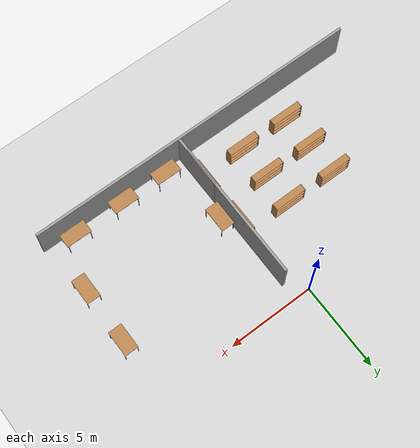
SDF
<sdf version="1.7">
 <world name="default">
  <model name="ground_plane">
   <static>1</static>
   <link name="link">
    <collision name="collision">
     <geometry><plane><normal>0 0 1</normal><size>100 100</size></plane></geometry>
     <surface>
      <contact><collide_bitmask>65535</collide_bitmask></contact>
      <friction><ode><mu>100</mu><mu2>50</mu2></ode></friction>
     </surface>
    </collision>
    <visual name="visual">
     <cast_shadows>0</cast_shadows>
     <geometry><plane><normal>0 0 1</normal><size>100 100</size></plane></geometry>
     <material>
      <script><uri>file://media/materials/scripts/gazebo.material</uri><name>Gazebo/Grey</name></script>
     </material>
    </visual>
   </link>
  </model>
  <model name="wall_20m_0_clone">
   <pose>-0.174596 -10.5481 0 0 0 -1.56837</pose>
   <link name="Wall_0">
    <collision name="Wall_0_Collision">
     <geometry><box><size>20 0.15 2.5</size></box></geometry>
     <pose>0 0 1.25 0 -0 0</pose>
    </collision>
    <visual name="Wall_0_Visual">
     <pose>0 0 1.25 0 -0 0</pose>
     <geometry><box><size>20 0.15 2.5</size></box></geometry>
     <material>
      <script><uri>file://media/materials/scripts/gazebo.material</uri><name>Gazebo/Grey</name></script>
      <ambient>1 1 1 1</ambient>
     </material>
     <meta><layer>0</layer></meta>
    </visual>
    <pose>-0.482276 -0 0 0 -0 1.5708</pose>
   </link>
   <static>1</static>
  </model>
  <model name="wall_9m_1">
   <pose>0.904043 -5.47693 0 0 0 -1.57385</pose>
   <link name="Wall_0">
    <collision name="Wall_0_Collision">
     <geometry><box><size>3.16 0.15 2.5</size></box></geometry>
     <pose>0 0 1.25 0 -0 0</pose>
    </collision>
    <visual name="Wall_0_Visual">
     <pose>0 0 1.25 0 -0 0</pose>
     <geometry><box><size>3.16 0.15 2.5</size></box></geometry>
     <material>
      <script><uri>file://media/materials/scripts/gazebo.material</uri><name>Gazebo/Grey</name></script>
      <ambient>1 1 1 1</ambient>
     </material>
     <meta><layer>0</layer></meta>
    </visual>
    <pose>2.92 0 0 0 -0 0</pose>
   </link>
   <link name="Wall_1">
    <collision name="Wall_1_Collision">
     <geometry><box><size>9 0.15 2.5</size></box></geometry>
     <pose>0 0 1.25 0 -0 0</pose>
    </collision>
    <visual name="Wall_1_Visual">
     <pose>0 0 1.25 0 -0 0</pose>
     <geometry><box><size>9 0.15 2.5</size></box></geometry>
     <material>
      <script><uri>file://media/materials/scripts/gazebo.material</uri><name>Gazebo/Grey</name></script>
      <ambient>1 1 1 1</ambient>
     </material>
     <meta><layer>0</layer></meta>
    </visual>
    <pose>0 0 0 0 -0 3.14159</pose>
   </link>
   <static>1</static>
  </model>
  <model name="bookshelf_twosided_0">
   <static>1</static>
   <link name="link">
    <inertial><mass>1</mass></inertial>
    <collision name="left_side">
     <pose>0.95 -0.195 0.6 0 -0 0</pose>
     <geometry><box><size>0.02 0.4 1.2</size></box></geometry>
    </collision>
    <visual name="left_side">
     <pose>0.95 -0.195 0.6 0 -0 0</pose>
     <geometry><box><size>0.02 0.4 1.2</size></box></geometry>
     <material>
      <script><uri>file://media/materials/scripts/gazebo.material</uri><name>Gazebo/Wood</name></script>
     </material>
    </visual>
    <collision name="right_side">
     <pose>-0.95 -0.195 0.6 0 -0 0</pose>
     <geometry><box><size>0.02 0.4 1.2</size></box></geometry>
    </collision>
    <visual name="right_side">
     <pose>-0.95 -0.195 0.6 0 -0 0</pose>
     <geometry><box><size>0.02 0.4 1.2</size></box></geometry>
     <material>
      <script><uri>file://media/materials/scripts/gazebo.material</uri><name>Gazebo/Wood</name></script>
     </material>
    </visual>
    <collision name="bottom">
     <pose>0 -0.195 0.03 0 -0 0</pose>
     <geometry><box><size>1.88 0.4 0.06</size></box></geometry>
    </collision>
    <visual name="bottom">
     <pose>0 -0.195 0.03 0 -0 0</pose>
     <geometry><box><size>1.88 0.4 0.06</size></box></geometry>
     <material>
      <script><uri>file://media/materials/scripts/gazebo.material</uri><name>Gazebo/Wood</name></script>
     </material>
    </visual>
    <collision name="top">
     <pose>0 -0.195 1.19 0 -0 0</pose>
     <geometry><box><size>1.88 0.4 0.02</size></box></geometry>
    </collision>
    <visual name="top">
     <pose>0 -0.195 1.19 0 -0 0</pose>
     <geometry><box><size>1.88 0.4 0.02</size></box></geometry>
     <material>
      <script><uri>file://media/materials/scripts/gazebo.material</uri><name>Gazebo/Wood</name></script>
     </material>
    </visual>
    <collision name="low_shelf">
     <pose>0 -0.195 0.43 0 -0 0</pose>
     <geometry><box><size>1.88 0.4 0.02</size></box></geometry>
    </collision>
    <visual name="low_shelf">
     <pose>0 -0.195 0.43 0 -0 0</pose>
     <geometry><box><size>1.88 0.4 0.02</size></box></geometry>
     <material>
      <script><uri>file://media/materials/scripts/gazebo.material</uri><name>Gazebo/Wood</name></script>
     </material>
    </visual>
    <collision name="high_shelf">
     <pose>0 -0.195 0.8 0 -0 0</pose>
     <geometry><box><size>1.88 0.4 0.02</size></box></geometry>
    </collision>
    <visual name="high_shelf">
     <pose>0 -0.195 0.8 0 -0 0</pose>
     <geometry><box><size>1.88 0.4 0.02</size></box></geometry>
     <material>
      <script><uri>file://media/materials/scripts/gazebo.material</uri><name>Gazebo/Wood</name></script>
     </material>
    </visual>
   </link>
   <pose>-5.00919 -8.07152 0 0 -0 0</pose>
  </model>
  <model name="bookshelf_twosided_1">
   <static>1</static>
   <link name="link">
    <inertial><mass>1</mass></inertial>
    <collision name="left_side">
     <pose>0.95 -0.195 0.6 0 -0 0</pose>
     <geometry><box><size>0.02 0.4 1.2</size></box></geometry>
    </collision>
    <visual name="left_side">
     <pose>0.95 -0.195 0.6 0 -0 0</pose>
     <geometry><box><size>0.02 0.4 1.2</size></box></geometry>
     <material>
      <script><uri>file://media/materials/scripts/gazebo.material</uri><name>Gazebo/Wood</name></script>
     </material>
    </visual>
    <collision name="right_side">
     <pose>-0.95 -0.195 0.6 0 -0 0</pose>
     <geometry><box><size>0.02 0.4 1.2</size></box></geometry>
    </collision>
    <visual name="right_side">
     <pose>-0.95 -0.195 0.6 0 -0 0</pose>
     <geometry><box><size>0.02 0.4 1.2</size></box></geometry>
     <material>
      <script><uri>file://media/materials/scripts/gazebo.material</uri><name>Gazebo/Wood</name></script>
     </material>
    </visual>
    <collision name="bottom">
     <pose>0 -0.195 0.03 0 -0 0</pose>
     <geometry><box><size>1.88 0.4 0.06</size></box></geometry>
    </collision>
    <visual name="bottom">
     <pose>0 -0.195 0.03 0 -0 0</pose>
     <geometry><box><size>1.88 0.4 0.06</size></box></geometry>
     <material>
      <script><uri>file://media/materials/scripts/gazebo.material</uri><name>Gazebo/Wood</name></script>
     </material>
    </visual>
    <collision name="top">
     <pose>0 -0.195 1.19 0 -0 0</pose>
     <geometry><box><size>1.88 0.4 0.02</size></box></geometry>
    </collision>
    <visual name="top">
     <pose>0 -0.195 1.19 0 -0 0</pose>
     <geometry><box><size>1.88 0.4 0.02</size></box></geometry>
     <material>
      <script><uri>file://media/materials/scripts/gazebo.material</uri><name>Gazebo/Wood</name></script>
     </material>
    </visual>
    <collision name="low_shelf">
     <pose>0 -0.195 0.43 0 -0 0</pose>
     <geometry><box><size>1.88 0.4 0.02</size></box></geometry>
    </collision>
    <visual name="low_shelf">
     <pose>0 -0.195 0.43 0 -0 0</pose>
     <geometry><box><size>1.88 0.4 0.02</size></box></geometry>
     <material>
      <script><uri>file://media/materials/scripts/gazebo.material</uri><name>Gazebo/Wood</name></script>
     </material>
    </visual>
    <collision name="high_shelf">
     <pose>0 -0.195 0.8 0 -0 0</pose>
     <geometry><box><size>1.88 0.4 0.02</size></box></geometry>
    </collision>
    <visual name="high_shelf">
     <pose>0 -0.195 0.8 0 -0 0</pose>
     <geometry><box><size>1.88 0.4 0.02</size></box></geometry>
     <material>
      <script><uri>file://media/materials/scripts/gazebo.material</uri><name>Gazebo/Wood</name></script>
     </material>
    </visual>
   </link>
   <pose>-2.03359 -8.06213 0 0 -0 0</pose>
  </model>
  <model name="bookshelf_twosided_3">
   <static>1</static>
   <link name="link">
    <inertial><mass>1</mass></inertial>
    <collision name="left_side">
     <pose>0.95 -0.195 0.6 0 -0 0</pose>
     <geometry><box><size>0.02 0.4 1.2</size></box></geometry>
    </collision>
    <visual name="left_side">
     <pose>0.95 -0.195 0.6 0 -0 0</pose>
     <geometry><box><size>0.02 0.4 1.2</size></box></geometry>
     <material>
      <script><uri>file://media/materials/scripts/gazebo.material</uri><name>Gazebo/Wood</name></script>
     </material>
    </visual>
    <collision name="right_side">
     <pose>-0.95 -0.195 0.6 0 -0 0</pose>
     <geometry><box><size>0.02 0.4 1.2</size></box></geometry>
    </collision>
    <visual name="right_side">
     <pose>-0.95 -0.195 0.6 0 -0 0</pose>
     <geometry><box><size>0.02 0.4 1.2</size></box></geometry>
     <material>
      <script><uri>file://media/materials/scripts/gazebo.material</uri><name>Gazebo/Wood</name></script>
     </material>
    </visual>
    <collision name="bottom">
     <pose>0 -0.195 0.03 0 -0 0</pose>
     <geometry><box><size>1.88 0.4 0.06</size></box></geometry>
    </collision>
    <visual name="bottom">
     <pose>0 -0.195 0.03 0 -0 0</pose>
     <geometry><box><size>1.88 0.4 0.06</size></box></geometry>
     <material>
      <script><uri>file://media/materials/scripts/gazebo.material</uri><name>Gazebo/Wood</name></script>
     </material>
    </visual>
    <collision name="top">
     <pose>0 -0.195 1.19 0 -0 0</pose>
     <geometry><box><size>1.88 0.4 0.02</size></box></geometry>
    </collision>
    <visual name="top">
     <pose>0 -0.195 1.19 0 -0 0</pose>
     <geometry><box><size>1.88 0.4 0.02</size></box></geometry>
     <material>
      <script><uri>file://media/materials/scripts/gazebo.material</uri><name>Gazebo/Wood</name></script>
     </material>
    </visual>
    <collision name="low_shelf">
     <pose>0 -0.195 0.43 0 -0 0</pose>
     <geometry><box><size>1.88 0.4 0.02</size></box></geometry>
    </collision>
    <visual name="low_shelf">
     <pose>0 -0.195 0.43 0 -0 0</pose>
     <geometry><box><size>1.88 0.4 0.02</size></box></geometry>
     <material>
      <script><uri>file://media/materials/scripts/gazebo.material</uri><name>Gazebo/Wood</name></script>
     </material>
    </visual>
    <collision name="high_shelf">
     <pose>0 -0.195 0.8 0 -0 0</pose>
     <geometry><box><size>1.88 0.4 0.02</size></box></geometry>
    </collision>
    <visual name="high_shelf">
     <pose>0 -0.195 0.8 0 -0 0</pose>
     <geometry><box><size>1.88 0.4 0.02</size></box></geometry>
     <material>
      <script><uri>file://media/materials/scripts/gazebo.material</uri><name>Gazebo/Wood</name></script>
     </material>
    </visual>
   </link>
   <pose>-5.05887 -6.04865 0 0 -0 0</pose>
  </model>
  <model name="bookshelf_twosided_4">
   <static>1</static>
   <link name="link">
    <inertial><mass>1</mass></inertial>
    <collision name="left_side">
     <pose>0.95 -0.195 0.6 0 -0 0</pose>
     <geometry><box><size>0.02 0.4 1.2</size></box></geometry>
    </collision>
    <visual name="left_side">
     <pose>0.95 -0.195 0.6 0 -0 0</pose>
     <geometry><box><size>0.02 0.4 1.2</size></box></geometry>
     <material>
      <script><uri>file://media/materials/scripts/gazebo.material</uri><name>Gazebo/Wood</name></script>
     </material>
    </visual>
    <collision name="right_side">
     <pose>-0.95 -0.195 0.6 0 -0 0</pose>
     <geometry><box><size>0.02 0.4 1.2</size></box></geometry>
    </collision>
    <visual name="right_side">
     <pose>-0.95 -0.195 0.6 0 -0 0</pose>
     <geometry><box><size>0.02 0.4 1.2</size></box></geometry>
     <material>
      <script><uri>file://media/materials/scripts/gazebo.material</uri><name>Gazebo/Wood</name></script>
     </material>
    </visual>
    <collision name="bottom">
     <pose>0 -0.195 0.03 0 -0 0</pose>
     <geometry><box><size>1.88 0.4 0.06</size></box></geometry>
    </collision>
    <visual name="bottom">
     <pose>0 -0.195 0.03 0 -0 0</pose>
     <geometry><box><size>1.88 0.4 0.06</size></box></geometry>
     <material>
      <script><uri>file://media/materials/scripts/gazebo.material</uri><name>Gazebo/Wood</name></script>
     </material>
    </visual>
    <collision name="top">
     <pose>0 -0.195 1.19 0 -0 0</pose>
     <geometry><box><size>1.88 0.4 0.02</size></box></geometry>
    </collision>
    <visual name="top">
     <pose>0 -0.195 1.19 0 -0 0</pose>
     <geometry><box><size>1.88 0.4 0.02</size></box></geometry>
     <material>
      <script><uri>file://media/materials/scripts/gazebo.material</uri><name>Gazebo/Wood</name></script>
     </material>
    </visual>
    <collision name="low_shelf">
     <pose>0 -0.195 0.43 0 -0 0</pose>
     <geometry><box><size>1.88 0.4 0.02</size></box></geometry>
    </collision>
    <visual name="low_shelf">
     <pose>0 -0.195 0.43 0 -0 0</pose>
     <geometry><box><size>1.88 0.4 0.02</size></box></geometry>
     <material>
      <script><uri>file://media/materials/scripts/gazebo.material</uri><name>Gazebo/Wood</name></script>
     </material>
    </visual>
    <collision name="high_shelf">
     <pose>0 -0.195 0.8 0 -0 0</pose>
     <geometry><box><size>1.88 0.4 0.02</size></box></geometry>
    </collision>
    <visual name="high_shelf">
     <pose>0 -0.195 0.8 0 -0 0</pose>
     <geometry><box><size>1.88 0.4 0.02</size></box></geometry>
     <material>
      <script><uri>file://media/materials/scripts/gazebo.material</uri><name>Gazebo/Wood</name></script>
     </material>
    </visual>
   </link>
   <pose>-2.11262 -6.05427 0 0 -0 0</pose>
  </model>
  <model name="bookshelf_twosided_6">
   <static>1</static>
   <link name="link">
    <inertial><mass>1</mass></inertial>
    <collision name="left_side">
     <pose>0.95 -0.195 0.6 0 -0 0</pose>
     <geometry><box><size>0.02 0.4 1.2</size></box></geometry>
    </collision>
    <visual name="left_side">
     <pose>0.95 -0.195 0.6 0 -0 0</pose>
     <geometry><box><size>0.02 0.4 1.2</size></box></geometry>
     <material>
      <script><uri>file://media/materials/scripts/gazebo.material</uri><name>Gazebo/Wood</name></script>
     </material>
    </visual>
    <collision name="right_side">
     <pose>-0.95 -0.195 0.6 0 -0 0</pose>
     <geometry><box><size>0.02 0.4 1.2</size></box></geometry>
    </collision>
    <visual name="right_side">
     <pose>-0.95 -0.195 0.6 0 -0 0</pose>
     <geometry><box><size>0.02 0.4 1.2</size></box></geometry>
     <material>
      <script><uri>file://media/materials/scripts/gazebo.material</uri><name>Gazebo/Wood</name></script>
     </material>
    </visual>
    <collision name="bottom">
     <pose>0 -0.195 0.03 0 -0 0</pose>
     <geometry><box><size>1.88 0.4 0.06</size></box></geometry>
    </collision>
    <visual name="bottom">
     <pose>0 -0.195 0.03 0 -0 0</pose>
     <geometry><box><size>1.88 0.4 0.06</size></box></geometry>
     <material>
      <script><uri>file://media/materials/scripts/gazebo.material</uri><name>Gazebo/Wood</name></script>
     </material>
    </visual>
    <collision name="top">
     <pose>0 -0.195 1.19 0 -0 0</pose>
     <geometry><box><size>1.88 0.4 0.02</size></box></geometry>
    </collision>
    <visual name="top">
     <pose>0 -0.195 1.19 0 -0 0</pose>
     <geometry><box><size>1.88 0.4 0.02</size></box></geometry>
     <material>
      <script><uri>file://media/materials/scripts/gazebo.material</uri><name>Gazebo/Wood</name></script>
     </material>
    </visual>
    <collision name="low_shelf">
     <pose>0 -0.195 0.43 0 -0 0</pose>
     <geometry><box><size>1.88 0.4 0.02</size></box></geometry>
    </collision>
    <visual name="low_shelf">
     <pose>0 -0.195 0.43 0 -0 0</pose>
     <geometry><box><size>1.88 0.4 0.02</size></box></geometry>
     <material>
      <script><uri>file://media/materials/scripts/gazebo.material</uri><name>Gazebo/Wood</name></script>
     </material>
    </visual>
    <collision name="high_shelf">
     <pose>0 -0.195 0.8 0 -0 0</pose>
     <geometry><box><size>1.88 0.4 0.02</size></box></geometry>
    </collision>
    <visual name="high_shelf">
     <pose>0 -0.195 0.8 0 -0 0</pose>
     <geometry><box><size>1.88 0.4 0.02</size></box></geometry>
     <material>
      <script><uri>file://media/materials/scripts/gazebo.material</uri><name>Gazebo/Wood</name></script>
     </material>
    </visual>
   </link>
   <pose>-5.09321 -4.07593 0 0 -0 0</pose>
  </model>
  <model name="bookshelf_twosided_7">
   <static>1</static>
   <link name="link">
    <inertial><mass>1</mass></inertial>
    <collision name="left_side">
     <pose>0.95 -0.195 0.6 0 -0 0</pose>
     <geometry><box><size>0.02 0.4 1.2</size></box></geometry>
    </collision>
    <visual name="left_side">
     <pose>0.95 -0.195 0.6 0 -0 0</pose>
     <geometry><box><size>0.02 0.4 1.2</size></box></geometry>
     <material>
      <script><uri>file://media/materials/scripts/gazebo.material</uri><name>Gazebo/Wood</name></script>
     </material>
    </visual>
    <collision name="right_side">
     <pose>-0.95 -0.195 0.6 0 -0 0</pose>
     <geometry><box><size>0.02 0.4 1.2</size></box></geometry>
    </collision>
    <visual name="right_side">
     <pose>-0.95 -0.195 0.6 0 -0 0</pose>
     <geometry><box><size>0.02 0.4 1.2</size></box></geometry>
     <material>
      <script><uri>file://media/materials/scripts/gazebo.material</uri><name>Gazebo/Wood</name></script>
     </material>
    </visual>
    <collision name="bottom">
     <pose>0 -0.195 0.03 0 -0 0</pose>
     <geometry><box><size>1.88 0.4 0.06</size></box></geometry>
    </collision>
    <visual name="bottom">
     <pose>0 -0.195 0.03 0 -0 0</pose>
     <geometry><box><size>1.88 0.4 0.06</size></box></geometry>
     <material>
      <script><uri>file://media/materials/scripts/gazebo.material</uri><name>Gazebo/Wood</name></script>
     </material>
    </visual>
    <collision name="top">
     <pose>0 -0.195 1.19 0 -0 0</pose>
     <geometry><box><size>1.88 0.4 0.02</size></box></geometry>
    </collision>
    <visual name="top">
     <pose>0 -0.195 1.19 0 -0 0</pose>
     <geometry><box><size>1.88 0.4 0.02</size></box></geometry>
     <material>
      <script><uri>file://media/materials/scripts/gazebo.material</uri><name>Gazebo/Wood</name></script>
     </material>
    </visual>
    <collision name="low_shelf">
     <pose>0 -0.195 0.43 0 -0 0</pose>
     <geometry><box><size>1.88 0.4 0.02</size></box></geometry>
    </collision>
    <visual name="low_shelf">
     <pose>0 -0.195 0.43 0 -0 0</pose>
     <geometry><box><size>1.88 0.4 0.02</size></box></geometry>
     <material>
      <script><uri>file://media/materials/scripts/gazebo.material</uri><name>Gazebo/Wood</name></script>
     </material>
    </visual>
    <collision name="high_shelf">
     <pose>0 -0.195 0.8 0 -0 0</pose>
     <geometry><box><size>1.88 0.4 0.02</size></box></geometry>
    </collision>
    <visual name="high_shelf">
     <pose>0 -0.195 0.8 0 -0 0</pose>
     <geometry><box><size>1.88 0.4 0.02</size></box></geometry>
     <material>
      <script><uri>file://media/materials/scripts/gazebo.material</uri><name>Gazebo/Wood</name></script>
     </material>
    </visual>
   </link>
   <pose>-2.06106 -4.13375 0 0 -0 0</pose>
  </model>
  <model name="bookshelf_twosided_11">
   <static>1</static>
   <link name="link">
    <inertial><mass>1</mass></inertial>
    <collision name="left_side">
     <pose>0.95 -0.195 0.6 0 -0 0</pose>
     <geometry><box><size>0.02 0.4 1.2</size></box></geometry>
    </collision>
    <visual name="left_side">
     <pose>0.95 -0.195 0.6 0 -0 0</pose>
     <geometry><box><size>0.02 0.4 1.2</size></box></geometry>
     <material>
      <script><uri>file://media/materials/scripts/gazebo.material</uri><name>Gazebo/Wood</name></script>
     </material>
    </visual>
    <collision name="right_side">
     <pose>-0.95 -0.195 0.6 0 -0 0</pose>
     <geometry><box><size>0.02 0.4 1.2</size></box></geometry>
    </collision>
    <visual name="right_side">
     <pose>-0.95 -0.195 0.6 0 -0 0</pose>
     <geometry><box><size>0.02 0.4 1.2</size></box></geometry>
     <material>
      <script><uri>file://media/materials/scripts/gazebo.material</uri><name>Gazebo/Wood</name></script>
     </material>
    </visual>
    <collision name="bottom">
     <pose>0 -0.195 0.03 0 -0 0</pose>
     <geometry><box><size>1.88 0.4 0.06</size></box></geometry>
    </collision>
    <visual name="bottom">
     <pose>0 -0.195 0.03 0 -0 0</pose>
     <geometry><box><size>1.88 0.4 0.06</size></box></geometry>
     <material>
      <script><uri>file://media/materials/scripts/gazebo.material</uri><name>Gazebo/Wood</name></script>
     </material>
    </visual>
    <collision name="top">
     <pose>0 -0.195 1.19 0 -0 0</pose>
     <geometry><box><size>1.88 0.4 0.02</size></box></geometry>
    </collision>
    <visual name="top">
     <pose>0 -0.195 1.19 0 -0 0</pose>
     <geometry><box><size>1.88 0.4 0.02</size></box></geometry>
     <material>
      <script><uri>file://media/materials/scripts/gazebo.material</uri><name>Gazebo/Wood</name></script>
     </material>
    </visual>
    <collision name="low_shelf">
     <pose>0 -0.195 0.43 0 -0 0</pose>
     <geometry><box><size>1.88 0.4 0.02</size></box></geometry>
    </collision>
    <visual name="low_shelf">
     <pose>0 -0.195 0.43 0 -0 0</pose>
     <geometry><box><size>1.88 0.4 0.02</size></box></geometry>
     <material>
      <script><uri>file://media/materials/scripts/gazebo.material</uri><name>Gazebo/Wood</name></script>
     </material>
    </visual>
    <collision name="high_shelf">
     <pose>0 -0.195 0.8 0 -0 0</pose>
     <geometry><box><size>1.88 0.4 0.02</size></box></geometry>
    </collision>
    <visual name="high_shelf">
     <pose>0 -0.195 0.8 0 -0 0</pose>
     <geometry><box><size>1.88 0.4 0.02</size></box></geometry>
     <material>
      <script><uri>file://media/materials/scripts/gazebo.material</uri><name>Gazebo/Wood</name></script>
     </material>
    </visual>
   </link>
   <pose>0.827375 -7.96872 0 0 0 -1.57564</pose>
  </model>
  <model name="bookshelf_twosided_11_clone">
   <static>1</static>
   <link name="link">
    <inertial><mass>1</mass></inertial>
    <collision name="left_side">
     <pose>0.95 -0.195 0.6 0 -0 0</pose>
     <geometry><box><size>0.02 0.4 1.2</size></box></geometry>
    </collision>
    <visual name="left_side">
     <pose>0.95 -0.195 0.6 0 -0 0</pose>
     <geometry><box><size>0.02 0.4 1.2</size></box></geometry>
     <material>
      <script><uri>file://media/materials/scripts/gazebo.material</uri><name>Gazebo/Wood</name></script>
     </material>
    </visual>
    <collision name="right_side">
     <pose>-0.95 -0.195 0.6 0 -0 0</pose>
     <geometry><box><size>0.02 0.4 1.2</size></box></geometry>
    </collision>
    <visual name="right_side">
     <pose>-0.95 -0.195 0.6 0 -0 0</pose>
     <geometry><box><size>0.02 0.4 1.2</size></box></geometry>
     <material>
      <script><uri>file://media/materials/scripts/gazebo.material</uri><name>Gazebo/Wood</name></script>
     </material>
    </visual>
    <collision name="bottom">
     <pose>0 -0.195 0.03 0 -0 0</pose>
     <geometry><box><size>1.88 0.4 0.06</size></box></geometry>
    </collision>
    <visual name="bottom">
     <pose>0 -0.195 0.03 0 -0 0</pose>
     <geometry><box><size>1.88 0.4 0.06</size></box></geometry>
     <material>
      <script><uri>file://media/materials/scripts/gazebo.material</uri><name>Gazebo/Wood</name></script>
     </material>
    </visual>
    <collision name="top">
     <pose>0 -0.195 1.19 0 -0 0</pose>
     <geometry><box><size>1.88 0.4 0.02</size></box></geometry>
    </collision>
    <visual name="top">
     <pose>0 -0.195 1.19 0 -0 0</pose>
     <geometry><box><size>1.88 0.4 0.02</size></box></geometry>
     <material>
      <script><uri>file://media/materials/scripts/gazebo.material</uri><name>Gazebo/Wood</name></script>
     </material>
    </visual>
    <collision name="low_shelf">
     <pose>0 -0.195 0.43 0 -0 0</pose>
     <geometry><box><size>1.88 0.4 0.02</size></box></geometry>
    </collision>
    <visual name="low_shelf">
     <pose>0 -0.195 0.43 0 -0 0</pose>
     <geometry><box><size>1.88 0.4 0.02</size></box></geometry>
     <material>
      <script><uri>file://media/materials/scripts/gazebo.material</uri><name>Gazebo/Wood</name></script>
     </material>
    </visual>
    <collision name="high_shelf">
     <pose>0 -0.195 0.8 0 -0 0</pose>
     <geometry><box><size>1.88 0.4 0.02</size></box></geometry>
    </collision>
    <visual name="high_shelf">
     <pose>0 -0.195 0.8 0 -0 0</pose>
     <geometry><box><size>1.88 0.4 0.02</size></box></geometry>
     <material>
      <script><uri>file://media/materials/scripts/gazebo.material</uri><name>Gazebo/Wood</name></script>
     </material>
    </visual>
   </link>
   <pose>0.807055 -5.00884 0 0 0 -1.57564</pose>
  </model>
  <model name="table_clone_7">
   <static>1</static>
   <link name="link">
    <collision name="surface">
     <pose>0 0 1 0 -0 0</pose>
     <geometry><box><size>1.5 0.8 0.03</size></box></geometry>
     <surface><friction><ode><mu>0.6</mu><mu2>0.6</mu2></ode></friction></surface>
    </collision>
    <visual name="visual1">
     <pose>0 0 1 0 -0 0</pose>
     <geometry><box><size>1.5 0.8 0.03</size></box></geometry>
     <material>
      <script><uri>file://media/materials/scripts/gazebo.material</uri><name>Gazebo/Wood</name></script>
     </material>
    </visual>
    <collision name="front_left_leg">
     <pose>0.68 0.38 0.5 0 -0 0</pose>
     <geometry><cylinder><radius>0.02</radius><length>1</length></cylinder></geometry>
    </collision>
    <visual name="front_left_leg">
     <pose>0.68 0.38 0.5 0 -0 0</pose>
     <geometry><cylinder><radius>0.02</radius><length>1</length></cylinder></geometry>
     <material>
      <script><uri>file://media/materials/scripts/gazebo.material</uri><name>Gazebo/Grey</name></script>
     </material>
    </visual>
    <collision name="front_right_leg">
     <pose>0.68 -0.38 0.5 0 -0 0</pose>
     <geometry><cylinder><radius>0.02</radius><length>1</length></cylinder></geometry>
    </collision>
    <visual name="front_right_leg">
     <pose>0.68 -0.38 0.5 0 -0 0</pose>
     <geometry><cylinder><radius>0.02</radius><length>1</length></cylinder></geometry>
     <material>
      <script><uri>file://media/materials/scripts/gazebo.material</uri><name>Gazebo/Grey</name></script>
     </material>
    </visual>
    <collision name="back_right_leg">
     <pose>-0.68 -0.38 0.5 0 -0 0</pose>
     <geometry><cylinder><radius>0.02</radius><length>1</length></cylinder></geometry>
    </collision>
    <visual name="back_right_leg">
     <pose>-0.68 -0.38 0.5 0 -0 0</pose>
     <geometry><cylinder><radius>0.02</radius><length>1</length></cylinder></geometry>
     <material>
      <script><uri>file://media/materials/scripts/gazebo.material</uri><name>Gazebo/Grey</name></script>
     </material>
    </visual>
    <collision name="back_left_leg">
     <pose>-0.68 0.38 0.5 0 -0 0</pose>
     <geometry><cylinder><radius>0.02</radius><length>1</length></cylinder></geometry>
    </collision>
    <visual name="back_left_leg">
     <pose>-0.68 0.38 0.5 0 -0 0</pose>
     <geometry><cylinder><radius>0.02</radius><length>1</length></cylinder></geometry>
     <material>
      <script><uri>file://media/materials/scripts/gazebo.material</uri><name>Gazebo/Grey</name></script>
     </material>
    </visual>
   </link>
   <pose>2.23589 -9.48839 0 0 -0 3.13908</pose>
  </model>
  <model name="table_clone_8">
   <static>1</static>
   <link name="link">
    <collision name="surface">
     <pose>0 0 1 0 -0 0</pose>
     <geometry><box><size>1.5 0.8 0.03</size></box></geometry>
     <surface><friction><ode><mu>0.6</mu><mu2>0.6</mu2></ode></friction></surface>
    </collision>
    <visual name="visual1">
     <pose>0 0 1 0 -0 0</pose>
     <geometry><box><size>1.5 0.8 0.03</size></box></geometry>
     <material>
      <script><uri>file://media/materials/scripts/gazebo.material</uri><name>Gazebo/Wood</name></script>
     </material>
    </visual>
    <collision name="front_left_leg">
     <pose>0.68 0.38 0.5 0 -0 0</pose>
     <geometry><cylinder><radius>0.02</radius><length>1</length></cylinder></geometry>
    </collision>
    <visual name="front_left_leg">
     <pose>0.68 0.38 0.5 0 -0 0</pose>
     <geometry><cylinder><radius>0.02</radius><length>1</length></cylinder></geometry>
     <material>
      <script><uri>file://media/materials/scripts/gazebo.material</uri><name>Gazebo/Grey</name></script>
     </material>
    </visual>
    <collision name="front_right_leg">
     <pose>0.68 -0.38 0.5 0 -0 0</pose>
     <geometry><cylinder><radius>0.02</radius><length>1</length></cylinder></geometry>
    </collision>
    <visual name="front_right_leg">
     <pose>0.68 -0.38 0.5 0 -0 0</pose>
     <geometry><cylinder><radius>0.02</radius><length>1</length></cylinder></geometry>
     <material>
      <script><uri>file://media/materials/scripts/gazebo.material</uri><name>Gazebo/Grey</name></script>
     </material>
    </visual>
    <collision name="back_right_leg">
     <pose>-0.68 -0.38 0.5 0 -0 0</pose>
     <geometry><cylinder><radius>0.02</radius><length>1</length></cylinder></geometry>
    </collision>
    <visual name="back_right_leg">
     <pose>-0.68 -0.38 0.5 0 -0 0</pose>
     <geometry><cylinder><radius>0.02</radius><length>1</length></cylinder></geometry>
     <material>
      <script><uri>file://media/materials/scripts/gazebo.material</uri><name>Gazebo/Grey</name></script>
     </material>
    </visual>
    <collision name="back_left_leg">
     <pose>-0.68 0.38 0.5 0 -0 0</pose>
     <geometry><cylinder><radius>0.02</radius><length>1</length></cylinder></geometry>
    </collision>
    <visual name="back_left_leg">
     <pose>-0.68 0.38 0.5 0 -0 0</pose>
     <geometry><cylinder><radius>0.02</radius><length>1</length></cylinder></geometry>
     <material>
      <script><uri>file://media/materials/scripts/gazebo.material</uri><name>Gazebo/Grey</name></script>
     </material>
    </visual>
   </link>
   <pose>4.97621 -9.5011 0 0 -0 3.13908</pose>
  </model>
  <model name="table_clone_9">
   <static>1</static>
   <link name="link">
    <collision name="surface">
     <pose>0 0 1 0 -0 0</pose>
     <geometry><box><size>1.5 0.8 0.03</size></box></geometry>
     <surface><friction><ode><mu>0.6</mu><mu2>0.6</mu2></ode></friction></surface>
    </collision>
    <visual name="visual1">
     <pose>0 0 1 0 -0 0</pose>
     <geometry><box><size>1.5 0.8 0.03</size></box></geometry>
     <material>
      <script><uri>file://media/materials/scripts/gazebo.material</uri><name>Gazebo/Wood</name></script>
     </material>
    </visual>
    <collision name="front_left_leg">
     <pose>0.68 0.38 0.5 0 -0 0</pose>
     <geometry><cylinder><radius>0.02</radius><length>1</length></cylinder></geometry>
    </collision>
    <visual name="front_left_leg">
     <pose>0.68 0.38 0.5 0 -0 0</pose>
     <geometry><cylinder><radius>0.02</radius><length>1</length></cylinder></geometry>
     <material>
      <script><uri>file://media/materials/scripts/gazebo.material</uri><name>Gazebo/Grey</name></script>
     </material>
    </visual>
    <collision name="front_right_leg">
     <pose>0.68 -0.38 0.5 0 -0 0</pose>
     <geometry><cylinder><radius>0.02</radius><length>1</length></cylinder></geometry>
    </collision>
    <visual name="front_right_leg">
     <pose>0.68 -0.38 0.5 0 -0 0</pose>
     <geometry><cylinder><radius>0.02</radius><length>1</length></cylinder></geometry>
     <material>
      <script><uri>file://media/materials/scripts/gazebo.material</uri><name>Gazebo/Grey</name></script>
     </material>
    </visual>
    <collision name="back_right_leg">
     <pose>-0.68 -0.38 0.5 0 -0 0</pose>
     <geometry><cylinder><radius>0.02</radius><length>1</length></cylinder></geometry>
    </collision>
    <visual name="back_right_leg">
     <pose>-0.68 -0.38 0.5 0 -0 0</pose>
     <geometry><cylinder><radius>0.02</radius><length>1</length></cylinder></geometry>
     <material>
      <script><uri>file://media/materials/scripts/gazebo.material</uri><name>Gazebo/Grey</name></script>
     </material>
    </visual>
    <collision name="back_left_leg">
     <pose>-0.68 0.38 0.5 0 -0 0</pose>
     <geometry><cylinder><radius>0.02</radius><length>1</length></cylinder></geometry>
    </collision>
    <visual name="back_left_leg">
     <pose>-0.68 0.38 0.5 0 -0 0</pose>
     <geometry><cylinder><radius>0.02</radius><length>1</length></cylinder></geometry>
     <material>
      <script><uri>file://media/materials/scripts/gazebo.material</uri><name>Gazebo/Grey</name></script>
     </material>
    </visual>
   </link>
   <pose>8.03045 -9.47676 -0 0 -0 3.13908</pose>
  </model>
  <model name="table_0">
   <static>1</static>
   <link name="link">
    <collision name="surface">
     <pose>0 0 1 0 -0 0</pose>
     <geometry><box><size>1.5 0.8 0.03</size></box></geometry>
     <surface><friction><ode><mu>0.6</mu><mu2>0.6</mu2></ode></friction></surface>
    </collision>
    <visual name="visual1">
     <pose>0 0 1 0 -0 0</pose>
     <geometry><box><size>1.5 0.8 0.03</size></box></geometry>
     <material>
      <script><uri>file://media/materials/scripts/gazebo.material</uri><name>Gazebo/Wood</name></script>
     </material>
    </visual>
    <collision name="front_left_leg">
     <pose>0.68 0.38 0.5 0 -0 0</pose>
     <geometry><cylinder><radius>0.02</radius><length>1</length></cylinder></geometry>
    </collision>
    <visual name="front_left_leg">
     <pose>0.68 0.38 0.5 0 -0 0</pose>
     <geometry><cylinder><radius>0.02</radius><length>1</length></cylinder></geometry>
     <material>
      <script><uri>file://media/materials/scripts/gazebo.material</uri><name>Gazebo/Grey</name></script>
     </material>
    </visual>
    <collision name="front_right_leg">
     <pose>0.68 -0.38 0.5 0 -0 0</pose>
     <geometry><cylinder><radius>0.02</radius><length>1</length></cylinder></geometry>
    </collision>
    <visual name="front_right_leg">
     <pose>0.68 -0.38 0.5 0 -0 0</pose>
     <geometry><cylinder><radius>0.02</radius><length>1</length></cylinder></geometry>
     <material>
      <script><uri>file://media/materials/scripts/gazebo.material</uri><name>Gazebo/Grey</name></script>
     </material>
    </visual>
    <collision name="back_right_leg">
     <pose>-0.68 -0.38 0.5 0 -0 0</pose>
     <geometry><cylinder><radius>0.02</radius><length>1</length></cylinder></geometry>
    </collision>
    <visual name="back_right_leg">
     <pose>-0.68 -0.38 0.5 0 -0 0</pose>
     <geometry><cylinder><radius>0.02</radius><length>1</length></cylinder></geometry>
     <material>
      <script><uri>file://media/materials/scripts/gazebo.material</uri><name>Gazebo/Grey</name></script>
     </material>
    </visual>
    <collision name="back_left_leg">
     <pose>-0.68 0.38 0.5 0 -0 0</pose>
     <geometry><cylinder><radius>0.02</radius><length>1</length></cylinder></geometry>
    </collision>
    <visual name="back_left_leg">
     <pose>-0.68 0.38 0.5 0 -0 0</pose>
     <geometry><cylinder><radius>0.02</radius><length>1</length></cylinder></geometry>
     <material>
      <script><uri>file://media/materials/scripts/gazebo.material</uri><name>Gazebo/Grey</name></script>
     </material>
    </visual>
   </link>
   <pose>1.45742 -5.72204 0 0 0 -1.57315</pose>
  </model>
  <model name="table_0_clone_0">
   <static>1</static>
   <link name="link">
    <collision name="surface">
     <pose>0 0 1 0 -0 0</pose>
     <geometry><box><size>1.5 0.8 0.03</size></box></geometry>
     <surface><friction><ode><mu>0.6</mu><mu2>0.6</mu2></ode></friction></surface>
    </collision>
    <visual name="visual1">
     <pose>0 0 1 0 -0 0</pose>
     <geometry><box><size>1.5 0.8 0.03</size></box></geometry>
     <material>
      <script><uri>file://media/materials/scripts/gazebo.material</uri><name>Gazebo/Wood</name></script>
     </material>
    </visual>
    <collision name="front_left_leg">
     <pose>0.68 0.38 0.5 0 -0 0</pose>
     <geometry><cylinder><radius>0.02</radius><length>1</length></cylinder></geometry>
    </collision>
    <visual name="front_left_leg">
     <pose>0.68 0.38 0.5 0 -0 0</pose>
     <geometry><cylinder><radius>0.02</radius><length>1</length></cylinder></geometry>
     <material>
      <script><uri>file://media/materials/scripts/gazebo.material</uri><name>Gazebo/Grey</name></script>
     </material>
    </visual>
    <collision name="front_right_leg">
     <pose>0.68 -0.38 0.5 0 -0 0</pose>
     <geometry><cylinder><radius>0.02</radius><length>1</length></cylinder></geometry>
    </collision>
    <visual name="front_right_leg">
     <pose>0.68 -0.38 0.5 0 -0 0</pose>
     <geometry><cylinder><radius>0.02</radius><length>1</length></cylinder></geometry>
     <material>
      <script><uri>file://media/materials/scripts/gazebo.material</uri><name>Gazebo/Grey</name></script>
     </material>
    </visual>
    <collision name="back_right_leg">
     <pose>-0.68 -0.38 0.5 0 -0 0</pose>
     <geometry><cylinder><radius>0.02</radius><length>1</length></cylinder></geometry>
    </collision>
    <visual name="back_right_leg">
     <pose>-0.68 -0.38 0.5 0 -0 0</pose>
     <geometry><cylinder><radius>0.02</radius><length>1</length></cylinder></geometry>
     <material>
      <script><uri>file://media/materials/scripts/gazebo.material</uri><name>Gazebo/Grey</name></script>
     </material>
    </visual>
    <collision name="back_left_leg">
     <pose>-0.68 0.38 0.5 0 -0 0</pose>
     <geometry><cylinder><radius>0.02</radius><length>1</length></cylinder></geometry>
    </collision>
    <visual name="back_left_leg">
     <pose>-0.68 0.38 0.5 0 -0 0</pose>
     <geometry><cylinder><radius>0.02</radius><length>1</length></cylinder></geometry>
     <material>
      <script><uri>file://media/materials/scripts/gazebo.material</uri><name>Gazebo/Grey</name></script>
     </material>
    </visual>
   </link>
   <pose>9.28054 -6.70521 0 0 0 -1.57315</pose>
  </model>
  <model name="table_0_clone_1">
   <static>1</static>
   <link name="link">
    <collision name="surface">
     <pose>0 0 1 0 -0 0</pose>
     <geometry><box><size>1.5 0.8 0.03</size></box></geometry>
     <surface><friction><ode><mu>0.6</mu><mu2>0.6</mu2></ode></friction></surface>
    </collision>
    <visual name="visual1">
     <pose>0 0 1 0 -0 0</pose>
     <geometry><box><size>1.5 0.8 0.03</size></box></geometry>
     <material>
      <script><uri>file://media/materials/scripts/gazebo.material</uri><name>Gazebo/Wood</name></script>
     </material>
    </visual>
    <collision name="front_left_leg">
     <pose>0.68 0.38 0.5 0 -0 0</pose>
     <geometry><cylinder><radius>0.02</radius><length>1</length></cylinder></geometry>
    </collision>
    <visual name="front_left_leg">
     <pose>0.68 0.38 0.5 0 -0 0</pose>
     <geometry><cylinder><radius>0.02</radius><length>1</length></cylinder></geometry>
     <material>
      <script><uri>file://media/materials/scripts/gazebo.material</uri><name>Gazebo/Grey</name></script>
     </material>
    </visual>
    <collision name="front_right_leg">
     <pose>0.68 -0.38 0.5 0 -0 0</pose>
     <geometry><cylinder><radius>0.02</radius><length>1</length></cylinder></geometry>
    </collision>
    <visual name="front_right_leg">
     <pose>0.68 -0.38 0.5 0 -0 0</pose>
     <geometry><cylinder><radius>0.02</radius><length>1</length></cylinder></geometry>
     <material>
      <script><uri>file://media/materials/scripts/gazebo.material</uri><name>Gazebo/Grey</name></script>
     </material>
    </visual>
    <collision name="back_right_leg">
     <pose>-0.68 -0.38 0.5 0 -0 0</pose>
     <geometry><cylinder><radius>0.02</radius><length>1</length></cylinder></geometry>
    </collision>
    <visual name="back_right_leg">
     <pose>-0.68 -0.38 0.5 0 -0 0</pose>
     <geometry><cylinder><radius>0.02</radius><length>1</length></cylinder></geometry>
     <material>
      <script><uri>file://media/materials/scripts/gazebo.material</uri><name>Gazebo/Grey</name></script>
     </material>
    </visual>
    <collision name="back_left_leg">
     <pose>-0.68 0.38 0.5 0 -0 0</pose>
     <geometry><cylinder><radius>0.02</radius><length>1</length></cylinder></geometry>
    </collision>
    <visual name="back_left_leg">
     <pose>-0.68 0.38 0.5 0 -0 0</pose>
     <geometry><cylinder><radius>0.02</radius><length>1</length></cylinder></geometry>
     <material>
      <script><uri>file://media/materials/scripts/gazebo.material</uri><name>Gazebo/Grey</name></script>
     </material>
    </visual>
   </link>
   <pose>9.29508 -3.38082 0 0 0 -1.57315</pose>
  </model>
 </world>
</sdf>
